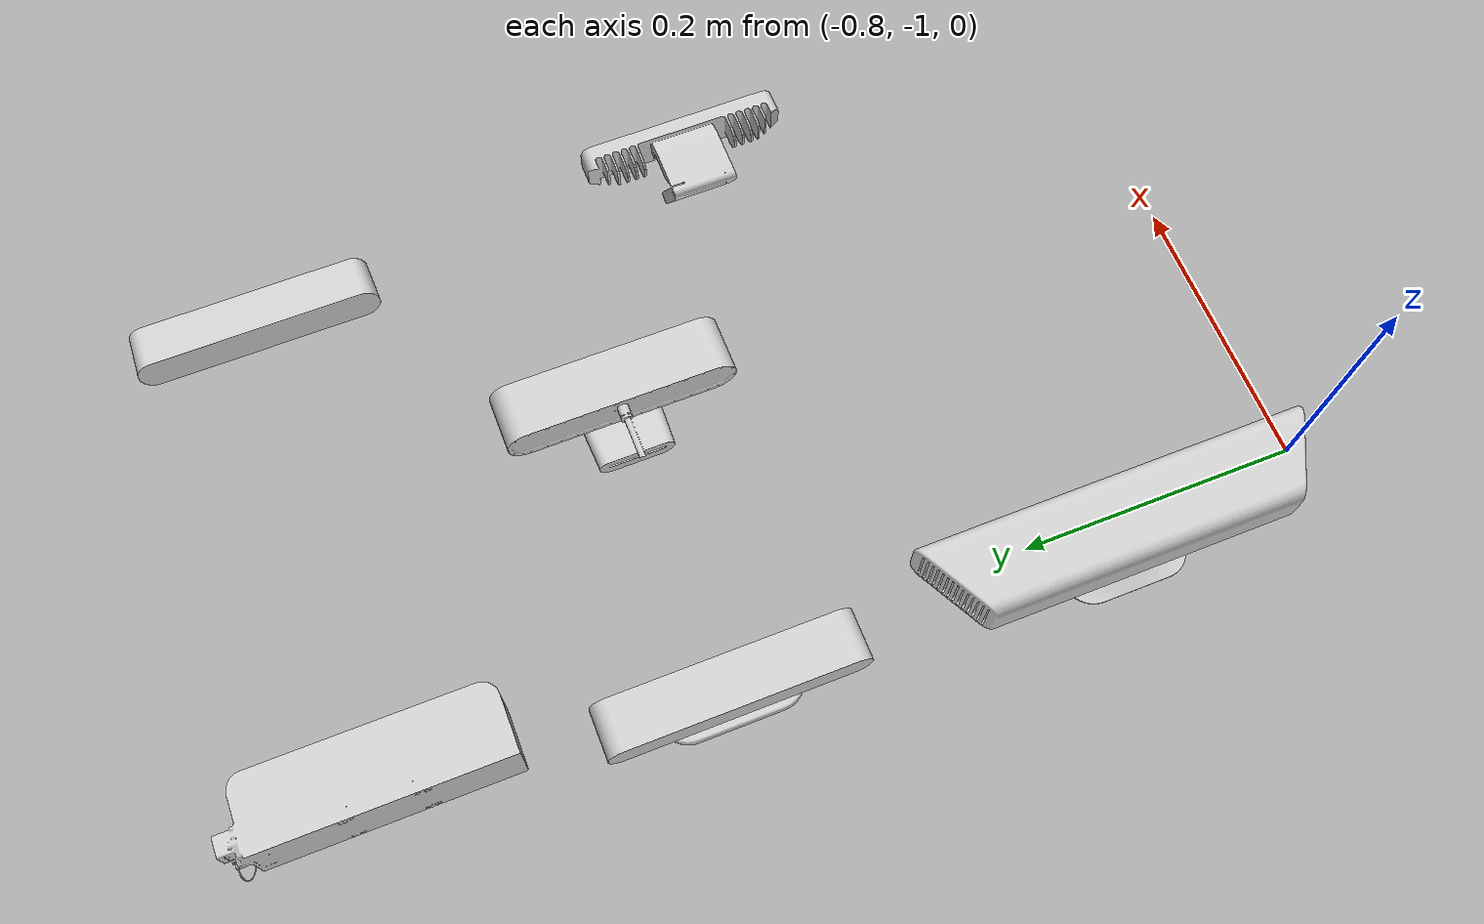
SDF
<sdf version="1.6">
 <world name="default">
  <light name="sun" type="directional">
   <pose>0 0 10 0 -0 0</pose>
   <diffuse>0.8 0.8 0.8 1</diffuse>
   <specular>0.2 0.2 0.2 1</specular>
   <attenuation>
    <range>1000</range>
    <constant>0.9</constant>
    <linear>0.01</linear>
    <quadratic>0.001</quadratic>
   </attenuation>
   <direction>-0.5 0.1 -0.9</direction>
  </light>
  <gravity>0 0 -9.8</gravity>
  <physics name="default_physics" default="0" type="ode">
   <max_step_size>0.001</max_step_size>
   <real_time_factor>1</real_time_factor>
   <real_time_update_rate>1000</real_time_update_rate>
  </physics>
  <scene><ambient>1 1 1 1</ambient><background>1 1 1 1</background><shadows>1</shadows></scene>
  <model name="asus_xtion_pro_live_sensor">
   <static>1</static>
   <pose>-0.812952 -0.531809 0.0334 0 -0 0</pose>
   <link name="link">
    <inertial><mass>0.1</mass></inertial>
    <collision name="collision">
     <pose>-0.01 -0.045 -0.01 0 -0 0</pose>
     <geometry><box><size>0.04 0.18 0.0468</size></box></geometry>
    </collision>
    <visual name="visual">
     <geometry>
      <mesh>
       <uri>model://asus_xtion_pro_live_sensor/meshes/asus_xtion_pro_live_sensor.stl</uri>
       <scale>1 1 1</scale>
      </mesh>
     </geometry>
     <material>
      <script>
       <name>SensorPlacementOptimization/LightGray</name>
       <uri>file://materials/sensor_placement_optimization.material</uri>
      </script>
     </material>
    </visual>
    <sensor name="sensor" type="depth">
     <update_rate>30</update_rate>
     <camera name="__default__">
      <horizontal_fov>1.01229</horizontal_fov>
      <image><width>640</width><height>480</height><format>B8G8R8</format></image>
      <clip><near>0.5</near><far>3.5</far></clip>
     </camera>
    </sensor>
   </link>
  </model>
  <model name="ensenso_n35_sensor">
   <static>1</static>
   <pose>-0.775849 -0.350539 0.025 0 -0 0</pose>
   <link name="link">
    <inertial><mass>0.1</mass></inertial>
    <collision name="collision">
     <pose>-0.02 0.008 0 0 -0 0</pose>
     <geometry><box><size>0.0566 0.1918 0.05</size></box></geometry>
    </collision>
    <visual name="visual">
     <geometry>
      <mesh><uri>model://ensenso_n35_sensor/meshes/ensenso_n35_sensor.stl</uri><scale>1 1 1</scale></mesh>
     </geometry>
     <material>
      <script>
       <name>SensorPlacementOptimization/LightGray</name>
       <uri>file://materials/sensor_placement_optimization.material</uri>
      </script>
     </material>
    </visual>
    <sensor name="sensor" type="depth">
     <update_rate>10</update_rate>
     <camera name="__default__">
      <horizontal_fov>1.01229</horizontal_fov>
      <image><width>1280</width><height>1024</height><format>B8G8R8</format></image>
      <clip><near>0.46</near><far>3</far></clip>
     </camera>
    </sensor>
   </link>
  </model>
  <model name="intel_realsense_sr300_sensor">
   <static>1</static>
   <pose>-0.422495 -0.717552 0.0327 0 -0 0</pose>
   <link name="link">
    <inertial><mass>0.1</mass></inertial>
    <collision name="collision">
     <pose>-0.027 0.025 -0.01 0 -0 0</pose>
     <geometry><box><size>0.0608 0.148 0.0454</size></box></geometry>
    </collision>
    <visual name="visual">
     <geometry>
      <mesh>
       <uri>model://intel_realsense_sr300_sensor/meshes/intel_realsense_sr300_sensor.stl</uri>
       <scale>1 1 1</scale>
      </mesh>
     </geometry>
     <material>
      <script>
       <name>SensorPlacementOptimization/LightGray</name>
       <uri>file://materials/sensor_placement_optimization.material</uri>
      </script>
     </material>
    </visual>
    <sensor name="sensor" type="depth">
     <update_rate>60</update_rate>
     <camera name="__default__">
      <horizontal_fov>1.24791</horizontal_fov>
      <image><width>640</width><height>480</height><format>B8G8R8</format></image>
      <clip><near>0.2</near><far>1.5</far></clip>
     </camera>
    </sensor>
   </link>
  </model>
  <model name="kinect_xbox_360_sensor">
   <static>1</static>
   <pose>-0.798877 -0.841057 0.0504 0 -0 0</pose>
   <link name="link">
    <inertial><mass>0.1</mass></inertial>
    <collision name="collision">
     <pose>-0.02 -0.0117 -0.015 0 -0 0</pose>
     <geometry><box><size>0.0728 0.2794 0.0708</size></box></geometry>
    </collision>
    <visual name="visual">
     <geometry>
      <mesh><uri>model://kinect_xbox_360_sensor/meshes/kinect_xbox_360_sensor.stl</uri><scale>1 1 1</scale></mesh>
     </geometry>
     <material>
      <script>
       <name>SensorPlacementOptimization/LightGray</name>
       <uri>file://materials/sensor_placement_optimization.material</uri>
      </script>
     </material>
    </visual>
    <sensor name="sensor" type="depth">
     <update_rate>30</update_rate>
     <camera name="__default__">
      <horizontal_fov>0.994838</horizontal_fov>
      <image><width>640</width><height>480</height><format>B8G8R8</format></image>
      <clip><near>0.4</near><far>3</far></clip>
     </camera>
    </sensor>
   </link>
  </model>
  <model name="orbbec_astra_sensor">
   <static>1</static>
   <pose>-0.589125 -0.541112 0.035 0 -0 0</pose>
   <link name="link">
    <inertial><mass>0.1</mass></inertial>
    <collision name="collision">
     <pose>-0.03 0.037 -0.01 0 -0 0</pose>
     <geometry><box><size>0.079 0.1648 0.05</size></box></geometry>
    </collision>
    <visual name="visual">
     <geometry>
      <mesh><uri>model://orbbec_astra_sensor/meshes/orbbec_astra_sensor.stl</uri><scale>1 1 1</scale></mesh>
     </geometry>
     <material>
      <script>
       <name>SensorPlacementOptimization/LightGray</name>
       <uri>file://materials/sensor_placement_optimization.material</uri>
      </script>
     </material>
    </visual>
    <sensor name="sensor" type="depth">
     <update_rate>30</update_rate>
     <camera name="__default__">
      <horizontal_fov>1.0472</horizontal_fov>
      <image><width>640</width><height>480</height><format>B8G8R8</format></image>
      <clip><near>0.6</near><far>8</far></clip>
     </camera>
    </sensor>
   </link>
  </model>
  <model name="zed_sensor">
   <static>1</static>
   <pose>-0.449522 -0.361508 0.015 0 -0 0</pose>
   <link name="link">
    <inertial><mass>0.1</mass></inertial>
    <collision name="collision">
     <pose>-0.0007 0 0 0 -0 0</pose>
     <geometry><box><size>0.0318 0.1748 0.03</size></box></geometry>
    </collision>
    <visual name="visual">
     <geometry><mesh><uri>model://zed_sensor/meshes/zed_sensor.stl</uri><scale>1 1 1</scale></mesh></geometry>
     <material>
      <script>
       <name>SensorPlacementOptimization/LightGray</name>
       <uri>file://materials/sensor_placement_optimization.material</uri>
      </script>
     </material>
    </visual>
    <sensor name="sensor" type="depth">
     <update_rate>15</update_rate>
     <camera name="__default__">
      <horizontal_fov>1.91986</horizontal_fov>
      <image><width>4416</width><height>1242</height><format>B8G8R8</format></image>
      <clip><near>0.7</near><far>20</far></clip>
     </camera>
    </sensor>
   </link>
  </model>
  <light name="user_point_light_0" type="point">
   <pose>1.06723 -0.424902 1 0 -0 0</pose>
   <diffuse>0.5 0.5 0.5 1</diffuse>
   <specular>0.1 0.1 0.1 1</specular>
   <attenuation>
    <range>20</range>
    <constant>0.5</constant>
    <linear>0.01</linear>
    <quadratic>0.001</quadratic>
   </attenuation>
   <cast_shadows>0</cast_shadows>
   <direction>0 0 -1</direction>
  </light>
 </world>
</sdf>
